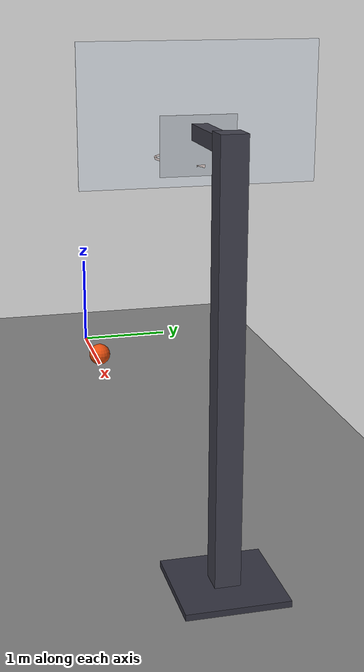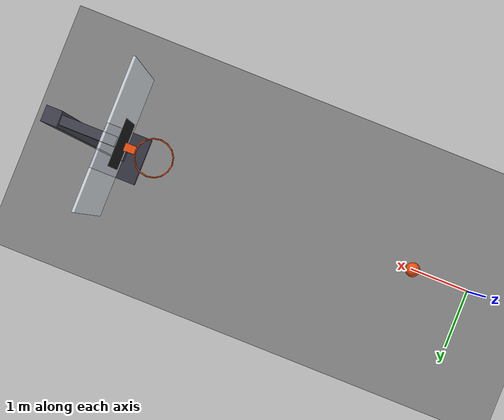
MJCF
<mujoco model="basketball_shot_into_a_hoop">
  <compiler angle="radian"/>
  <option timestep="0.002"/>
  <worldbody>
    <geom name="floor" type="plane" size="20 20 0.1" friction="0.8 0.005 0.002"/>
    <body name="ball" pos="1 0 0.1215">
      <freejoint/>
      <inertial pos="0 0 0" mass="0.6" diaginertia="0.0059049 0.0059049 0.0059049"/>
      <geom name="ball" type="sphere" pos="0 0 0" size="0.1215" condim="6" friction="0.8 0.01 0.004" solref="0.01 0.2" rgba="0.9 0.3 0.05 1"/>
    </body>
    <body name="hoop">
      <geom name="rim_00" type="capsule" size="0.008" fromto="5.2366 0 3.05 5.21859 0.0905429 3.05" rgba="0.9 0.3 0.05 1"/>
      <geom name="rim_01" type="capsule" size="0.008" fromto="5.21859 0.0905429 3.05 5.1673 0.167301 3.05" rgba="0.9 0.3 0.05 1"/>
      <geom name="rim_02" type="capsule" size="0.008" fromto="5.1673 0.167301 3.05 5.09054 0.21859 3.05" rgba="0.9 0.3 0.05 1"/>
      <geom name="rim_03" type="capsule" size="0.008" fromto="5.09054 0.21859 3.05 5 0.2366 3.05" rgba="0.9 0.3 0.05 1"/>
      <geom name="rim_04" type="capsule" size="0.008" fromto="5 0.2366 3.05 4.90946 0.21859 3.05" rgba="0.9 0.3 0.05 1"/>
      <geom name="rim_05" type="capsule" size="0.008" fromto="4.90946 0.21859 3.05 4.8327 0.167301 3.05" rgba="0.9 0.3 0.05 1"/>
      <geom name="rim_06" type="capsule" size="0.008" fromto="4.8327 0.167301 3.05 4.78141 0.0905429 3.05" rgba="0.9 0.3 0.05 1"/>
      <geom name="rim_07" type="capsule" size="0.008" fromto="4.78141 0.0905429 3.05 4.7634 2.89751e-17 3.05" rgba="0.9 0.3 0.05 1"/>
      <geom name="rim_08" type="capsule" size="0.008" fromto="4.7634 2.89751e-17 3.05 4.78141 -0.0905429 3.05" rgba="0.9 0.3 0.05 1"/>
      <geom name="rim_09" type="capsule" size="0.008" fromto="4.78141 -0.0905429 3.05 4.8327 -0.167301 3.05" rgba="0.9 0.3 0.05 1"/>
      <geom name="rim_10" type="capsule" size="0.008" fromto="4.8327 -0.167301 3.05 4.90946 -0.21859 3.05" rgba="0.9 0.3 0.05 1"/>
      <geom name="rim_11" type="capsule" size="0.008" fromto="4.90946 -0.21859 3.05 5 -0.2366 3.05" rgba="0.9 0.3 0.05 1"/>
      <geom name="rim_12" type="capsule" size="0.008" fromto="5 -0.2366 3.05 5.09054 -0.21859 3.05" rgba="0.9 0.3 0.05 1"/>
      <geom name="rim_13" type="capsule" size="0.008" fromto="5.09054 -0.21859 3.05 5.1673 -0.167301 3.05" rgba="0.9 0.3 0.05 1"/>
      <geom name="rim_14" type="capsule" size="0.008" fromto="5.1673 -0.167301 3.05 5.21859 -0.0905429 3.05" rgba="0.9 0.3 0.05 1"/>
      <geom name="rim_15" type="capsule" size="0.008" fromto="5.21859 -0.0905429 3.05 5.2366 -5.79503e-17 3.05" rgba="0.9 0.3 0.05 1"/>
      <geom name="hoop_bracket" type="box" pos="5.3105 0 3.04" size="0.0705 0.05 0.012" rgba="0.9 0.3 0.05 1"/>
      <geom name="hoop_backboard" type="box" pos="5.396 0 3.425" size="0.015 0.9 0.525" rgba="0.92 0.95 0.98 0.85"/>
      <geom name="hoop_square" type="box" pos="5.3805 0 3.195" size="0.0005 0.295 0.225" contype="0" conaffinity="0" rgba="0.1 0.1 0.1 1"/>
      <geom name="hoop_pole_base" type="box" pos="6.2 0 0.025" size="0.4 0.4 0.025" rgba="0.2 0.2 0.25 1"/>
      <geom name="hoop_pole" type="box" pos="6.2 0 1.7" size="0.1 0.1 1.7" rgba="0.25 0.25 0.3 1"/>
      <geom name="hoop_arm" type="box" pos="5.7555 0 3.3" size="0.3445 0.06 0.06" rgba="0.25 0.25 0.3 1"/>
    </body>
  </worldbody>
  <keyframe>
    <key name="start" qpos="1 0 0.1215 1 0 0 0" qvel="3.01 0 8.72 0 0 0"/>
  </keyframe>
</mujoco>
